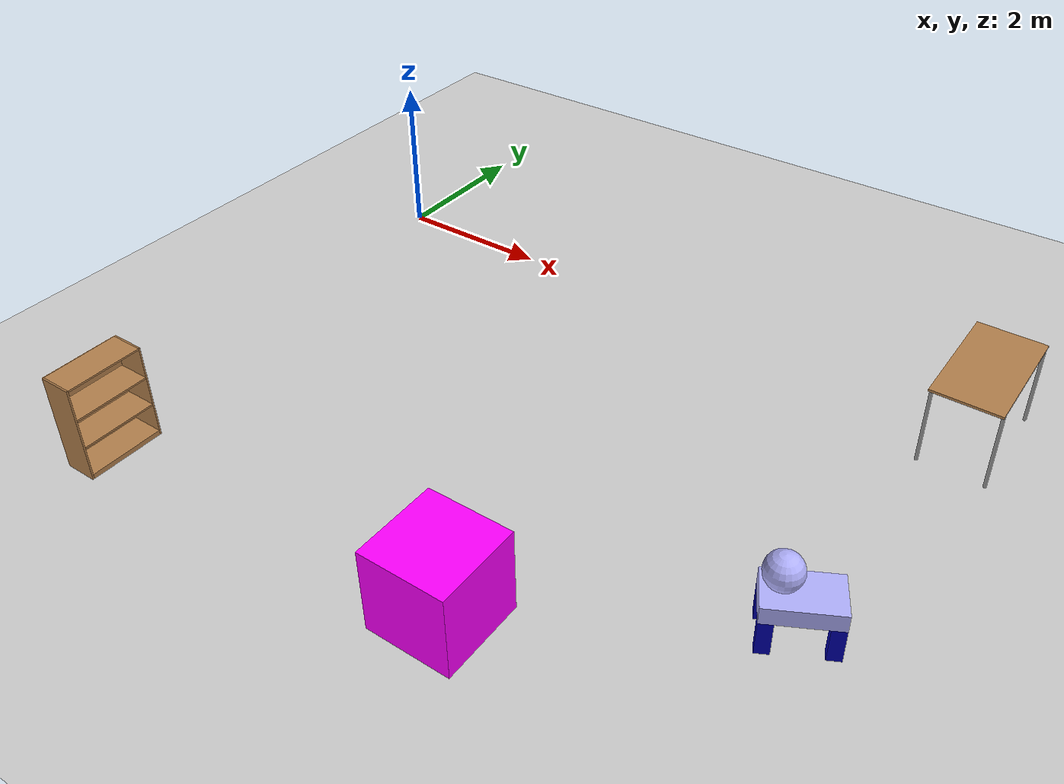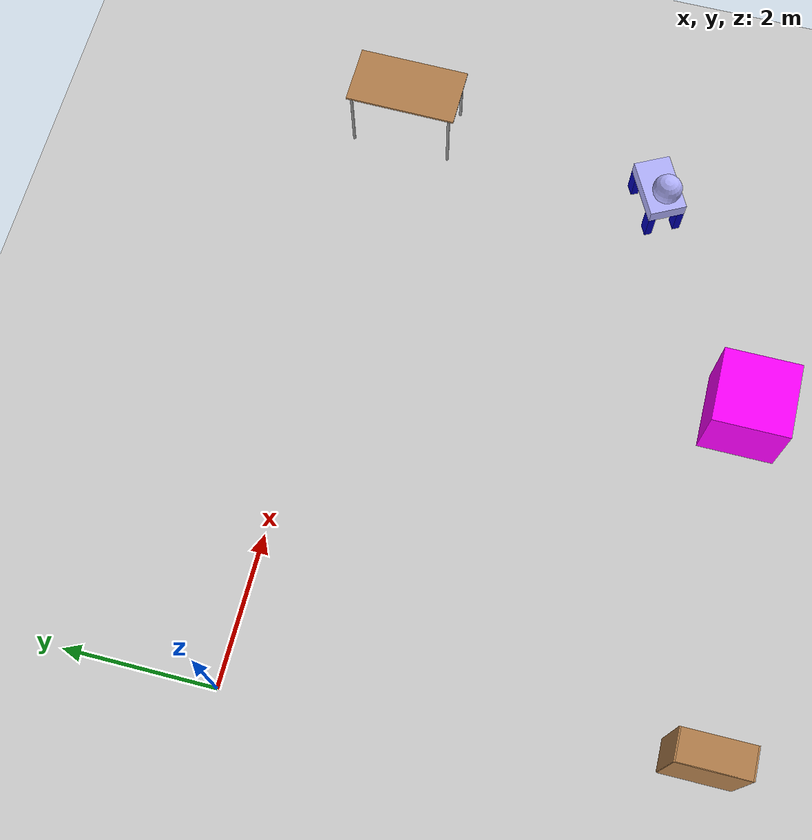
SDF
<sdf version="1.6">
 <world name="default">
  <model name="ground_plane">
   <static>1</static>
   <link name="link">
    <collision name="collision">
     <geometry><plane><normal>0 0 1</normal><size>100 100</size></plane></geometry>
     <surface><friction><ode><mu>100</mu><mu2>50</mu2></ode></friction></surface>
    </collision>
    <visual name="visual">
     <cast_shadows>0</cast_shadows>
     <geometry><plane><normal>0 0 1</normal><size>100 100</size></plane></geometry>
     <material>
      <script><uri>file://media/materials/scripts/gazebo.material</uri><name>Gazebo/Grey</name></script>
     </material>
    </visual>
   </link>
  </model>
  <model name="bookshelf">
   <static>1</static>
   <link name="link">
    <inertial><mass>1</mass></inertial>
    <collision name="back">
     <pose>0 0.005 0.6 0 -0 0</pose>
     <geometry><box><size>0.9 0.01 1.2</size></box></geometry>
    </collision>
    <visual name="visual1">
     <pose>0 0.005 0.6 0 -0 0</pose>
     <geometry><box><size>0.9 0.01 1.2</size></box></geometry>
     <material>
      <script><uri>file://media/materials/scripts/gazebo.material</uri><name>Gazebo/Wood</name></script>
     </material>
    </visual>
    <collision name="left_side">
     <pose>0.45 -0.195 0.6 0 -0 0</pose>
     <geometry><box><size>0.02 0.4 1.2</size></box></geometry>
    </collision>
    <visual name="visual2">
     <pose>0.45 -0.195 0.6 0 -0 0</pose>
     <geometry><box><size>0.02 0.4 1.2</size></box></geometry>
     <material>
      <script><uri>file://media/materials/scripts/gazebo.material</uri><name>Gazebo/Wood</name></script>
     </material>
    </visual>
    <collision name="right_side">
     <pose>-0.45 -0.195 0.6 0 -0 0</pose>
     <geometry><box><size>0.02 0.4 1.2</size></box></geometry>
    </collision>
    <visual name="visual3">
     <pose>-0.45 -0.195 0.6 0 -0 0</pose>
     <geometry><box><size>0.02 0.4 1.2</size></box></geometry>
     <material>
      <script><uri>file://media/materials/scripts/gazebo.material</uri><name>Gazebo/Wood</name></script>
     </material>
    </visual>
    <collision name="bottom">
     <pose>0 -0.195 0.03 0 -0 0</pose>
     <geometry><box><size>0.88 0.4 0.06</size></box></geometry>
    </collision>
    <visual name="visual4">
     <pose>0 -0.195 0.03 0 -0 0</pose>
     <geometry><box><size>0.88 0.4 0.06</size></box></geometry>
     <material>
      <script><uri>file://media/materials/scripts/gazebo.material</uri><name>Gazebo/Wood</name></script>
     </material>
    </visual>
    <collision name="top">
     <pose>0 -0.195 1.19 0 -0 0</pose>
     <geometry><box><size>0.88 0.4 0.02</size></box></geometry>
    </collision>
    <visual name="visual5">
     <pose>0 -0.195 1.19 0 -0 0</pose>
     <geometry><box><size>0.88 0.4 0.02</size></box></geometry>
     <material>
      <script><uri>file://media/materials/scripts/gazebo.material</uri><name>Gazebo/Wood</name></script>
     </material>
    </visual>
    <collision name="low_shelf">
     <pose>0 -0.195 0.43 0 -0 0</pose>
     <geometry><box><size>0.88 0.4 0.02</size></box></geometry>
    </collision>
    <visual name="visual6">
     <pose>0 -0.195 0.43 0 -0 0</pose>
     <geometry><box><size>0.88 0.4 0.02</size></box></geometry>
     <material>
      <script><uri>file://media/materials/scripts/gazebo.material</uri><name>Gazebo/Wood</name></script>
     </material>
    </visual>
    <collision name="high_shelf">
     <pose>0 -0.195 0.8 0 -0 0</pose>
     <geometry><box><size>0.88 0.4 0.02</size></box></geometry>
    </collision>
    <visual name="visual7">
     <pose>0 -0.195 0.8 0 -0 0</pose>
     <geometry><box><size>0.88 0.4 0.02</size></box></geometry>
     <material>
      <script><uri>file://media/materials/scripts/gazebo.material</uri><name>Gazebo/Wood</name></script>
     </material>
    </visual>
   </link>
   <pose>0.371342 -5.8152 0 0 -0 1.57628</pose>
  </model>
  <model name="table_0">
   <static>1</static>
   <link name="link">
    <collision name="surface">
     <pose>0 0 1 0 -0 0</pose>
     <geometry><box><size>1.5 0.8 0.03</size></box></geometry>
     <surface><friction><ode><mu>0.6</mu><mu2>0.6</mu2></ode></friction></surface>
    </collision>
    <visual name="visual1">
     <pose>0 0 1 0 -0 0</pose>
     <geometry><box><size>1.5 0.8 0.03</size></box></geometry>
     <material>
      <script><uri>file://media/materials/scripts/gazebo.material</uri><name>Gazebo/Wood</name></script>
     </material>
    </visual>
    <collision name="front_left_leg">
     <pose>0.68 0.38 0.5 0 -0 0</pose>
     <geometry><cylinder><radius>0.02</radius><length>1</length></cylinder></geometry>
    </collision>
    <visual name="front_left_leg">
     <pose>0.68 0.38 0.5 0 -0 0</pose>
     <geometry><cylinder><radius>0.02</radius><length>1</length></cylinder></geometry>
     <material>
      <script><uri>file://media/materials/scripts/gazebo.material</uri><name>Gazebo/Grey</name></script>
     </material>
    </visual>
    <collision name="front_right_leg">
     <pose>0.68 -0.38 0.5 0 -0 0</pose>
     <geometry><cylinder><radius>0.02</radius><length>1</length></cylinder></geometry>
    </collision>
    <visual name="front_right_leg">
     <pose>0.68 -0.38 0.5 0 -0 0</pose>
     <geometry><cylinder><radius>0.02</radius><length>1</length></cylinder></geometry>
     <material>
      <script><uri>file://media/materials/scripts/gazebo.material</uri><name>Gazebo/Grey</name></script>
     </material>
    </visual>
    <collision name="back_right_leg">
     <pose>-0.68 -0.38 0.5 0 -0 0</pose>
     <geometry><cylinder><radius>0.02</radius><length>1</length></cylinder></geometry>
    </collision>
    <visual name="back_right_leg">
     <pose>-0.68 -0.38 0.5 0 -0 0</pose>
     <geometry><cylinder><radius>0.02</radius><length>1</length></cylinder></geometry>
     <material>
      <script><uri>file://media/materials/scripts/gazebo.material</uri><name>Gazebo/Grey</name></script>
     </material>
    </visual>
    <collision name="back_left_leg">
     <pose>-0.68 0.38 0.5 0 -0 0</pose>
     <geometry><cylinder><radius>0.02</radius><length>1</length></cylinder></geometry>
    </collision>
    <visual name="back_left_leg">
     <pose>-0.68 0.38 0.5 0 -0 0</pose>
     <geometry><cylinder><radius>0.02</radius><length>1</length></cylinder></geometry>
     <material>
      <script><uri>file://media/materials/scripts/gazebo.material</uri><name>Gazebo/Grey</name></script>
     </material>
    </visual>
   </link>
   <pose>8.27636 -0.246907 0 0 0 -1.58172</pose>
  </model>
  <model name="unit_box">
   <link name="link">
    <inertial>
     <mass>1</mass>
     <inertia>
      <ixx>0.166667</ixx>
      <ixy>0</ixy>
      <ixz>0</ixz>
      <iyy>0.166667</iyy>
      <iyz>0</iyz>
      <izz>0.166667</izz>
     </inertia>
    </inertial>
    <visual name="visual">
     <geometry><box><size>1 1 1</size></box></geometry>
     <material>
      <script><name>Gazebo/Grey</name><uri>file://media/materials/scripts/gazebo.material</uri></script>
      <shader type="pixel"><normal_map>__default__</normal_map></shader>
      <ambient>1 0 1 1</ambient>
      <diffuse>0.7 0.7 0.7 1</diffuse>
      <specular>0.01 0.01 0.01 1</specular>
      <emissive>0 0 0 1</emissive>
     </material>
    </visual>
    <collision name="collision">
     <geometry><box><size>1 1 1</size></box></geometry>
     <surface>
      <friction>
       <ode><mu>1</mu><mu2>1</mu2><fdir1>0 0 0</fdir1><slip1>0</slip1><slip2>0</slip2></ode>
       <torsional>
        <coefficient>1</coefficient>
        <patch_radius>0</patch_radius>
        <surface_radius>0</surface_radius>
        <use_patch_radius>1</use_patch_radius>
        <ode><slip>0</slip></ode>
       </torsional>
      </friction>
      <bounce><restitution_coefficient>0</restitution_coefficient><threshold>1e+06</threshold></bounce>
      <contact>
       <collide_without_contact>0</collide_without_contact>
       <collide_without_contact_bitmask>1</collide_without_contact_bitmask>
       <collide_bitmask>1</collide_bitmask>
       <ode>
        <soft_cfm>0</soft_cfm>
        <soft_erp>0.2</soft_erp>
        <kp>1e+13</kp>
        <kd>1</kd>
        <max_vel>0.01</max_vel>
        <min_depth>0</min_depth>
       </ode>
       <bullet>
        <split_impulse>1</split_impulse>
        <split_impulse_penetration_threshold>-0.01</split_impulse_penetration_threshold>
        <soft_cfm>0</soft_cfm>
        <soft_erp>0.2</soft_erp>
        <kp>1e+13</kp>
        <kd>1</kd>
       </bullet>
      </contact>
     </surface>
    </collision>
   </link>
   <static>0</static>
   <pose>5.04019 -5.59246 0.499995 -1e-05 0 0</pose>
  </model>
  <model name="FourWheeledRobot_0">
   <link name="link_5">
    <pose>-0.377768 -0.060049 -0.016667 0 -0 0</pose>
    <inertial>
     <mass>1</mass>
     <inertia>
      <ixx>0.166667</ixx>
      <ixy>0</ixy>
      <ixz>0</ixz>
      <iyy>0.166667</iyy>
      <iyz>0</iyz>
      <izz>0.166667</izz>
     </inertia>
    </inertial>
    <visual name="visual">
     <geometry><box><size>0.15 0.1 0.4</size></box></geometry>
     <material>
      <lighting>1</lighting>
      <script><uri>file://media/materials/scripts/gazebo.material</uri><name>Gazebo/Grey</name></script>
      <shader type="pixel"><normal_map>__default__</normal_map></shader>
      <ambient>0 0 1 1</ambient>
      <diffuse>0 0 0.7 1</diffuse>
      <specular>0 0 0.01 1</specular>
      <emissive>0 0 0 1</emissive>
     </material>
    </visual>
    <collision name="collision">
     <geometry><box><size>0.15 0.1 0.4</size></box></geometry>
     <surface>
      <friction>
       <ode><mu>1</mu><mu2>1</mu2><fdir1>0 0 0</fdir1><slip1>0</slip1><slip2>0</slip2></ode>
       <torsional>
        <coefficient>1</coefficient>
        <patch_radius>0</patch_radius>
        <surface_radius>0</surface_radius>
        <use_patch_radius>1</use_patch_radius>
        <ode><slip>0</slip></ode>
       </torsional>
      </friction>
      <bounce><restitution_coefficient>0</restitution_coefficient><threshold>1e+06</threshold></bounce>
      <contact>
       <collide_without_contact>0</collide_without_contact>
       <collide_without_contact_bitmask>1</collide_without_contact_bitmask>
       <collide_bitmask>1</collide_bitmask>
       <ode>
        <soft_cfm>0</soft_cfm>
        <soft_erp>0.2</soft_erp>
        <kp>1e+13</kp>
        <kd>1</kd>
        <max_vel>0.01</max_vel>
        <min_depth>0</min_depth>
       </ode>
       <bullet>
        <split_impulse>1</split_impulse>
        <split_impulse_penetration_threshold>-0.01</split_impulse_penetration_threshold>
        <soft_cfm>0</soft_cfm>
        <soft_erp>0.2</soft_erp>
        <kp>1e+13</kp>
        <kd>1</kd>
       </bullet>
      </contact>
     </surface>
    </collision>
   </link>
   <link name="link_5_clone">
    <pose>-0.377768 0.339951 -0.016667 0 -0 0</pose>
    <inertial>
     <mass>1</mass>
     <inertia>
      <ixx>0.166667</ixx>
      <ixy>0</ixy>
      <ixz>0</ixz>
      <iyy>0.166667</iyy>
      <iyz>0</iyz>
      <izz>0.166667</izz>
     </inertia>
    </inertial>
    <visual name="visual">
     <geometry><box><size>0.15 0.1 0.4</size></box></geometry>
     <material>
      <lighting>1</lighting>
      <script><uri>file://media/materials/scripts/gazebo.material</uri><name>Gazebo/Grey</name></script>
      <shader type="pixel"><normal_map>__default__</normal_map></shader>
      <ambient>0 0 1 1</ambient>
      <diffuse>0 0 0.7 1</diffuse>
      <specular>0 0 0.01 1</specular>
      <emissive>0 0 0 1</emissive>
     </material>
    </visual>
    <collision name="collision">
     <geometry><box><size>0.15 0.1 0.4</size></box></geometry>
     <surface>
      <friction>
       <ode><mu>1</mu><mu2>1</mu2><fdir1>0 0 0</fdir1><slip1>0</slip1><slip2>0</slip2></ode>
       <torsional>
        <coefficient>1</coefficient>
        <patch_radius>0</patch_radius>
        <surface_radius>0</surface_radius>
        <use_patch_radius>1</use_patch_radius>
        <ode><slip>0</slip></ode>
       </torsional>
      </friction>
      <bounce><restitution_coefficient>0</restitution_coefficient><threshold>1e+06</threshold></bounce>
      <contact>
       <collide_without_contact>0</collide_without_contact>
       <collide_without_contact_bitmask>1</collide_without_contact_bitmask>
       <collide_bitmask>1</collide_bitmask>
       <ode>
        <soft_cfm>0</soft_cfm>
        <soft_erp>0.2</soft_erp>
        <kp>1e+13</kp>
        <kd>1</kd>
        <max_vel>0.01</max_vel>
        <min_depth>0</min_depth>
       </ode>
       <bullet>
        <split_impulse>1</split_impulse>
        <split_impulse_penetration_threshold>-0.01</split_impulse_penetration_threshold>
        <soft_cfm>0</soft_cfm>
        <soft_erp>0.2</soft_erp>
        <kp>1e+13</kp>
        <kd>1</kd>
       </bullet>
      </contact>
     </surface>
    </collision>
   </link>
   <link name="link_5_clone_0">
    <pose>0.272232 -0.060049 -0.016667 0 -0 0</pose>
    <inertial>
     <mass>1</mass>
     <inertia>
      <ixx>0.166667</ixx>
      <ixy>0</ixy>
      <ixz>0</ixz>
      <iyy>0.166667</iyy>
      <iyz>0</iyz>
      <izz>0.166667</izz>
     </inertia>
    </inertial>
    <visual name="visual">
     <geometry><box><size>0.15 0.1 0.4</size></box></geometry>
     <material>
      <lighting>1</lighting>
      <script><uri>file://media/materials/scripts/gazebo.material</uri><name>Gazebo/Grey</name></script>
      <shader type="pixel"><normal_map>__default__</normal_map></shader>
      <ambient>0 0 1 1</ambient>
      <diffuse>0 0 0.7 1</diffuse>
      <specular>0 0 0.01 1</specular>
      <emissive>0 0 0 1</emissive>
     </material>
    </visual>
    <collision name="collision">
     <geometry><box><size>0.15 0.1 0.4</size></box></geometry>
     <surface>
      <friction>
       <ode><mu>1</mu><mu2>1</mu2><fdir1>0 0 0</fdir1><slip1>0</slip1><slip2>0</slip2></ode>
       <torsional>
        <coefficient>1</coefficient>
        <patch_radius>0</patch_radius>
        <surface_radius>0</surface_radius>
        <use_patch_radius>1</use_patch_radius>
        <ode><slip>0</slip></ode>
       </torsional>
      </friction>
      <bounce><restitution_coefficient>0</restitution_coefficient><threshold>1e+06</threshold></bounce>
      <contact>
       <collide_without_contact>0</collide_without_contact>
       <collide_without_contact_bitmask>1</collide_without_contact_bitmask>
       <collide_bitmask>1</collide_bitmask>
       <ode>
        <soft_cfm>0</soft_cfm>
        <soft_erp>0.2</soft_erp>
        <kp>1e+13</kp>
        <kd>1</kd>
        <max_vel>0.01</max_vel>
        <min_depth>0</min_depth>
       </ode>
       <bullet>
        <split_impulse>1</split_impulse>
        <split_impulse_penetration_threshold>-0.01</split_impulse_penetration_threshold>
        <soft_cfm>0</soft_cfm>
        <soft_erp>0.2</soft_erp>
        <kp>1e+13</kp>
        <kd>1</kd>
       </bullet>
      </contact>
     </surface>
    </collision>
   </link>
   <link name="link_5_clone_1">
    <pose>0.272232 0.339951 -0.016667 0 -0 0</pose>
    <inertial>
     <mass>1</mass>
     <inertia>
      <ixx>0.166667</ixx>
      <ixy>0</ixy>
      <ixz>0</ixz>
      <iyy>0.166667</iyy>
      <iyz>0</iyz>
      <izz>0.166667</izz>
     </inertia>
    </inertial>
    <visual name="visual">
     <geometry><box><size>0.15 0.1 0.4</size></box></geometry>
     <material>
      <lighting>1</lighting>
      <script><uri>file://media/materials/scripts/gazebo.material</uri><name>Gazebo/Grey</name></script>
      <shader type="pixel"><normal_map>__default__</normal_map></shader>
      <ambient>0 0 1 1</ambient>
      <diffuse>0 0 0.7 1</diffuse>
      <specular>0 0 0.01 1</specular>
      <emissive>0 0 0 1</emissive>
     </material>
    </visual>
    <collision name="collision">
     <geometry><box><size>0.15 0.1 0.4</size></box></geometry>
     <surface>
      <friction>
       <ode><mu>1</mu><mu2>1</mu2><fdir1>0 0 0</fdir1><slip1>0</slip1><slip2>0</slip2></ode>
       <torsional>
        <coefficient>1</coefficient>
        <patch_radius>0</patch_radius>
        <surface_radius>0</surface_radius>
        <use_patch_radius>1</use_patch_radius>
        <ode><slip>0</slip></ode>
       </torsional>
      </friction>
      <bounce><restitution_coefficient>0</restitution_coefficient><threshold>1e+06</threshold></bounce>
      <contact>
       <collide_without_contact>0</collide_without_contact>
       <collide_without_contact_bitmask>1</collide_without_contact_bitmask>
       <collide_bitmask>1</collide_bitmask>
       <ode>
        <soft_cfm>0</soft_cfm>
        <soft_erp>0.2</soft_erp>
        <kp>1e+13</kp>
        <kd>1</kd>
        <max_vel>0.01</max_vel>
        <min_depth>0</min_depth>
       </ode>
       <bullet>
        <split_impulse>1</split_impulse>
        <split_impulse_penetration_threshold>-0.01</split_impulse_penetration_threshold>
        <soft_cfm>0</soft_cfm>
        <soft_erp>0.2</soft_erp>
        <kp>1e+13</kp>
        <kd>1</kd>
       </bullet>
      </contact>
     </surface>
    </collision>
   </link>
   <link name="link_6">
    <pose>-0.052768 0.139951 0.283333 0 -0 0</pose>
    <inertial>
     <mass>1</mass>
     <inertia>
      <ixx>0.166667</ixx>
      <ixy>0</ixy>
      <ixz>0</ixz>
      <iyy>0.166667</iyy>
      <iyz>0</iyz>
      <izz>0.166667</izz>
     </inertia>
    </inertial>
    <visual name="visual">
     <geometry><box><size>0.8 0.5 0.2</size></box></geometry>
     <material>
      <lighting>1</lighting>
      <script><uri>file://media/materials/scripts/gazebo.material</uri><name>Gazebo/Grey</name></script>
      <shader type="pixel"><normal_map>__default__</normal_map></shader>
      <ambient>0.3 0.3 1 1</ambient>
      <diffuse>0.7 0.7 1 1</diffuse>
      <specular>0.01 0.01 0.05 1</specular>
      <emissive>0 0 0 1</emissive>
     </material>
    </visual>
    <collision name="collision">
     <geometry><box><size>0.8 0.5 0.2</size></box></geometry>
     <surface>
      <friction>
       <ode><mu>1</mu><mu2>1</mu2><fdir1>0 0 0</fdir1><slip1>0</slip1><slip2>0</slip2></ode>
       <torsional>
        <coefficient>1</coefficient>
        <patch_radius>0</patch_radius>
        <surface_radius>0</surface_radius>
        <use_patch_radius>1</use_patch_radius>
        <ode><slip>0</slip></ode>
       </torsional>
      </friction>
      <bounce><restitution_coefficient>0</restitution_coefficient><threshold>1e+06</threshold></bounce>
      <contact>
       <collide_without_contact>0</collide_without_contact>
       <collide_without_contact_bitmask>1</collide_without_contact_bitmask>
       <collide_bitmask>1</collide_bitmask>
       <ode>
        <soft_cfm>0</soft_cfm>
        <soft_erp>0.2</soft_erp>
        <kp>1e+13</kp>
        <kd>1</kd>
        <max_vel>0.01</max_vel>
        <min_depth>0</min_depth>
       </ode>
       <bullet>
        <split_impulse>1</split_impulse>
        <split_impulse_penetration_threshold>-0.01</split_impulse_penetration_threshold>
        <soft_cfm>0</soft_cfm>
        <soft_erp>0.2</soft_erp>
        <kp>1e+13</kp>
        <kd>1</kd>
       </bullet>
      </contact>
     </surface>
    </collision>
   </link>
   <link name="link_7">
    <pose>0.147232 0.139951 0.618344 0 -0 0</pose>
    <inertial>
     <mass>1</mass>
     <inertia><ixx>0.1</ixx><ixy>0</ixy><ixz>0</ixz><iyy>0.1</iyy><iyz>0</iyz><izz>0.1</izz></inertia>
    </inertial>
    <visual name="visual">
     <geometry><sphere><radius>0.2</radius></sphere></geometry>
     <material>
      <lighting>1</lighting>
      <script><uri>file://media/materials/scripts/gazebo.material</uri><name>Gazebo/Grey</name></script>
      <shader type="pixel"><normal_map>__default__</normal_map></shader>
      <ambient>0.3 0.3 1 1</ambient>
      <diffuse>0.7 0.7 1 1</diffuse>
      <specular>0.01 0.01 0.05 1</specular>
      <emissive>0 0 0 1</emissive>
     </material>
    </visual>
    <collision name="collision">
     <geometry><sphere><radius>0.2</radius></sphere></geometry>
     <surface>
      <friction>
       <ode><mu>1</mu><mu2>1</mu2><fdir1>0 0 0</fdir1><slip1>0</slip1><slip2>0</slip2></ode>
       <torsional>
        <coefficient>1</coefficient>
        <patch_radius>0</patch_radius>
        <surface_radius>0</surface_radius>
        <use_patch_radius>1</use_patch_radius>
        <ode><slip>0</slip></ode>
       </torsional>
      </friction>
      <bounce><restitution_coefficient>0</restitution_coefficient><threshold>1e+06</threshold></bounce>
      <contact>
       <collide_without_contact>0</collide_without_contact>
       <collide_without_contact_bitmask>1</collide_without_contact_bitmask>
       <collide_bitmask>1</collide_bitmask>
       <ode>
        <soft_cfm>0</soft_cfm>
        <soft_erp>0.2</soft_erp>
        <kp>1e+13</kp>
        <kd>1</kd>
        <max_vel>0.01</max_vel>
        <min_depth>0</min_depth>
       </ode>
       <bullet>
        <split_impulse>1</split_impulse>
        <split_impulse_penetration_threshold>-0.01</split_impulse_penetration_threshold>
        <soft_cfm>0</soft_cfm>
        <soft_erp>0.2</soft_erp>
        <kp>1e+13</kp>
        <kd>1</kd>
       </bullet>
      </contact>
     </surface>
    </collision>
   </link>
   <joint name="link_6_JOINT_3" type="fixed">
    <parent>link_6</parent>
    <child>link_5</child>
    <physics>
     <ode><limit><cfm>0</cfm><erp>0.2</erp></limit><suspension><cfm>0</cfm><erp>0.2</erp></suspension></ode>
    </physics>
   </joint>
   <joint name="link_6_JOINT_4" type="fixed">
    <parent>link_6</parent>
    <child>link_5_clone</child>
    <physics>
     <ode><limit><cfm>0</cfm><erp>0.2</erp></limit><suspension><cfm>0</cfm><erp>0.2</erp></suspension></ode>
    </physics>
   </joint>
   <joint name="link_6_JOINT_5" type="fixed">
    <parent>link_6</parent>
    <child>link_5_clone_0</child>
    <physics>
     <ode><limit><cfm>0</cfm><erp>0.2</erp></limit><suspension><cfm>0</cfm><erp>0.2</erp></suspension></ode>
    </physics>
   </joint>
   <joint name="link_6_JOINT_6" type="fixed">
    <parent>link_6</parent>
    <child>link_5_clone_1</child>
    <physics>
     <ode><limit><cfm>0</cfm><erp>0.2</erp></limit><suspension><cfm>0</cfm><erp>0.2</erp></suspension></ode>
    </physics>
   </joint>
   <joint name="link_7_JOINT_15" type="fixed">
    <parent>link_7</parent>
    <child>link_6</child>
    <physics>
     <ode><limit><cfm>0</cfm><erp>0.2</erp></limit><suspension><cfm>0</cfm><erp>0.2</erp></suspension></ode>
    </physics>
   </joint>
   <static>0</static>
   <pose>7.75474 -3.78978 0.216667 -1e-06 0 -2.66058</pose>
  </model>
 </world>
</sdf>
